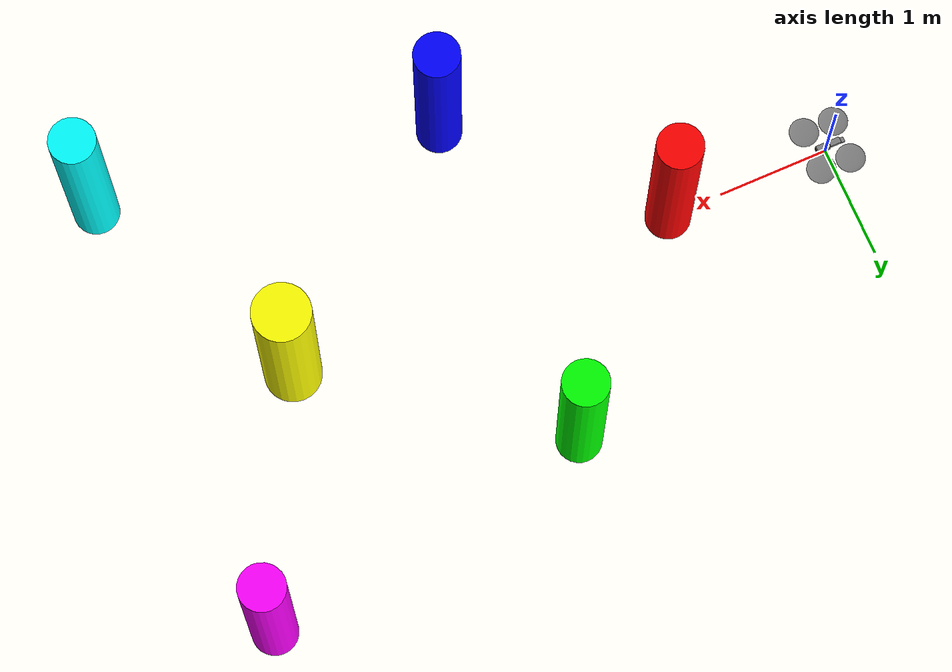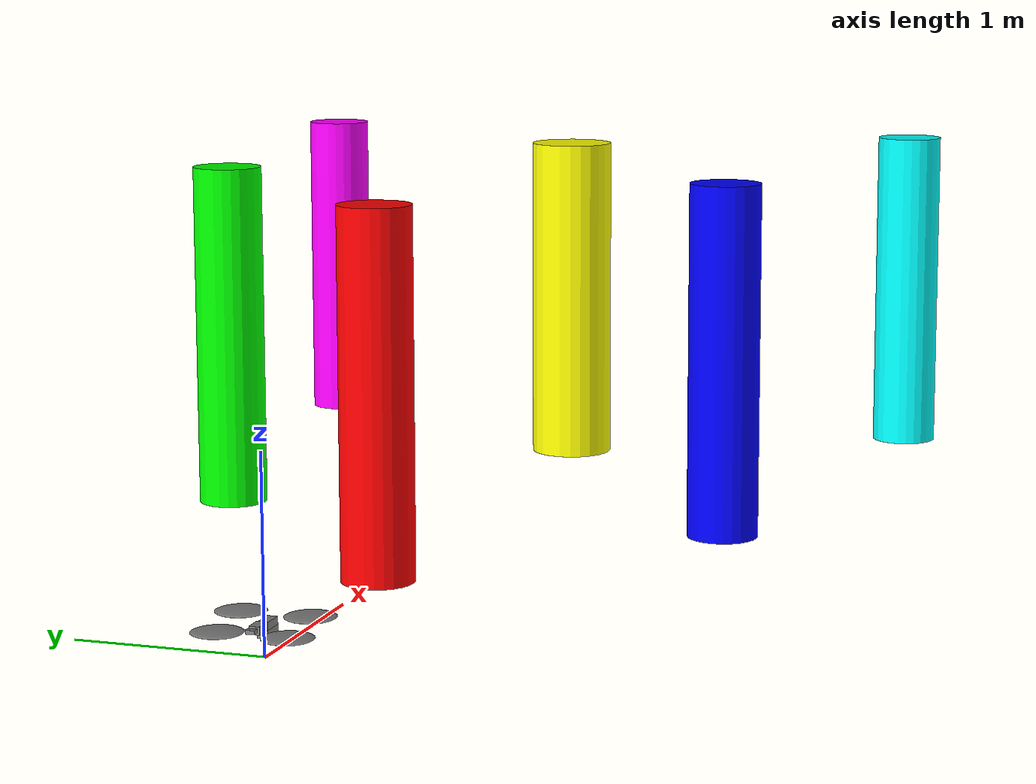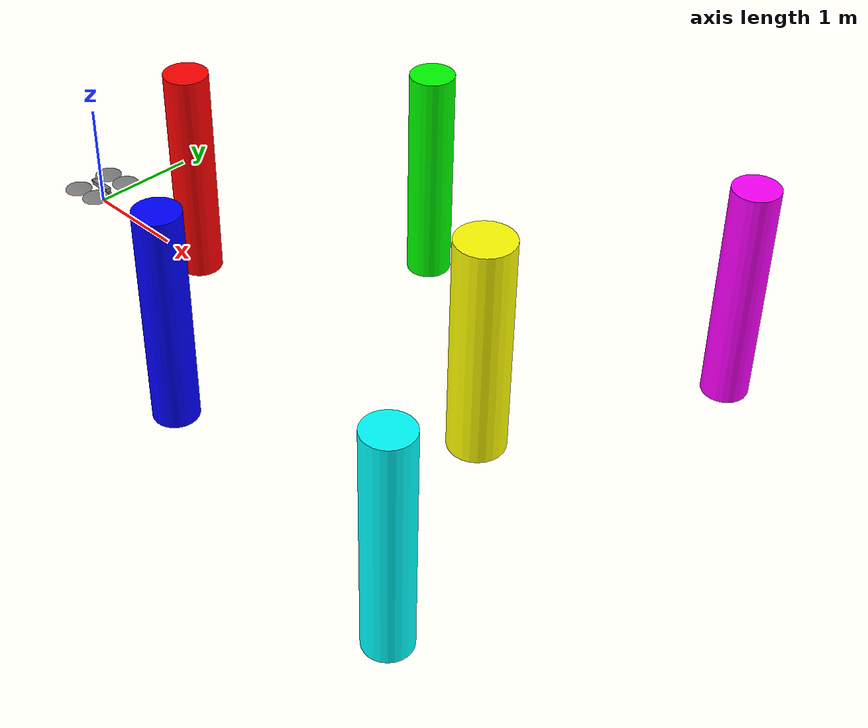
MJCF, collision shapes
<mujoco model="Skydio X2">
  <compiler autolimits="true" assetdir="assets"/>

  <option timestep="0.01" density="1.225" viscosity="1.8e-5"/>

  <default>
    <default class="x2">
      <geom mass="0"/>
      <motor ctrlrange="0 13"/>
      <mesh scale="0.01 0.01 0.01"/>
      <default class="visual">
        <geom group="2" type="mesh" contype="0" conaffinity="0"/>
      </default>
      <default class="collision">
        <geom group="3" type="box"/>
        <default class="rotor">
          <geom type="ellipsoid" size=".13 .13 .01"/>
        </default>
      </default>
      <site group="5"/>
    </default>
  </default>

  <asset>
    <texture type="2d" file="X2_lowpoly_texture_SpinningProps_1024.png"/>
    <material name="phong3SG" texture="X2_lowpoly_texture_SpinningProps_1024"/>
    <material name="invisible" rgba="0 0 0 0"/>

    <mesh class="x2" file="X2_lowpoly.obj"/>
  </asset>

  <worldbody>
    <!--geom name="fram" type="plane" size="5 5 0.5"/-->
    <light name="spotlight" mode="targetbodycom" target="x2" pos="0 -1 2"/>
    <body name="x2" pos="0 0 0.1" childclass="x2">
      <freejoint/>
      <camera name="track" pos="-1 0 .5" xyaxes="0 -1 0 1 0 2" mode="trackcom"/>
      <site name="imu" pos="0 0 .02"/>
      <geom material="phong3SG" mesh="X2_lowpoly" class="visual" quat="0 0 1 1"/>
      <geom class="collision" size=".06 .027 .02" pos=".04 0 .02"/>
      <geom class="collision" size=".06 .027 .02" pos=".04 0 .06"/>
      <geom class="collision" size=".05 .027 .02" pos="-.07 0 .065"/>
      <geom class="collision" size=".023 .017 .01" pos="-.137 .008 .065" quat="1 0 0 1"/>
      <geom name="rotor1" class="rotor" pos="-.14 -.18 .05" mass=".25"/>
      <geom name="rotor2" class="rotor" pos="-.14 .18 .05" mass=".25"/>
      <geom name="rotor3" class="rotor" pos=".14 .18 .08" mass=".25"/>
      <geom name="rotor4" class="rotor" pos=".14 -.18 .08" mass=".25"/>
      <geom size=".16 .04 .02" pos="0 0 0.02" type="ellipsoid" mass=".325" class="visual" material="invisible"/>
      <site name="thrust1" pos="-.14 -.18 .05"/>
      <site name="thrust2" pos="-.14 .18 .05"/>
      <site name="thrust3" pos=".14 .18 .08"/>
      <site name="thrust4" pos=".14 -.18 .08"/>
    </body>
    <!-- Pillar 1 -->
    <body name="pillar1" pos="1.5 0 1">
        <geom type="cylinder"
              size="0.2 1"
              rgba="1 0 0 1"/>
    </body>

    <!-- Pillar 2 -->
    <body name="pillar2" pos="3 1.5 1">
        <geom type="cylinder"
              size="0.2 1"
              rgba="0 1 0 1"/>
    </body>

    <!-- Pillar 3 -->
    <body name="pillar3" pos="3 -1.5 1">
        <geom type="cylinder"
              size="0.2 1"
              rgba="0 0 1 1"/>
    </body>

    <!-- Pillar 4 -->
    <body name="pillar4" pos="5 0 1">
        <geom type="cylinder"
              size="0.25 1"
              rgba="1 1 0 1"/>
    </body>

    <!-- Pillar 5 -->
    <body name="pillar5" pos="6 2 1">
        <geom type="cylinder"
              size="0.2 1"
              rgba="1 0 1 1"/>
    </body>

    <!-- Pillar 6 -->
    <body name="pillar6" pos="6 -2 1">
        <geom type="cylinder"
              size="0.2 1"
              rgba="0 1 1 1"/>
    </body>

  </worldbody>

  <actuator>
    <motor class="x2" name="thrust1" site="thrust1" ctrlrange="-5 13" gear="0 0 1 0 0 -.0201"/>
    <motor class="x2" name="thrust2" site="thrust2" gear="0 0 1 0 0  .0201"/>
    <motor class="x2" name="thrust3" site="thrust3" ctrlrange="-5 13" gear="0 0 1 0 0 -.0201"/>
    <motor class="x2" name="thrust4" site="thrust4" gear="0 0 1 0 0  .0201"/>
  </actuator>

  <sensor>
    <gyro name="body_gyro" site="imu"/>
    <accelerometer name="body_linacc" site="imu"/>
    <framequat name="body_quat" objtype="site" objname="imu"/>
  </sensor>

  <keyframe>
    <key name="hover" qpos="0 0 .3 1 0 0 0" ctrl="3.2495625 3.2495625 3.2495625 3.2495625"/>
  </keyframe>
</mujoco>
